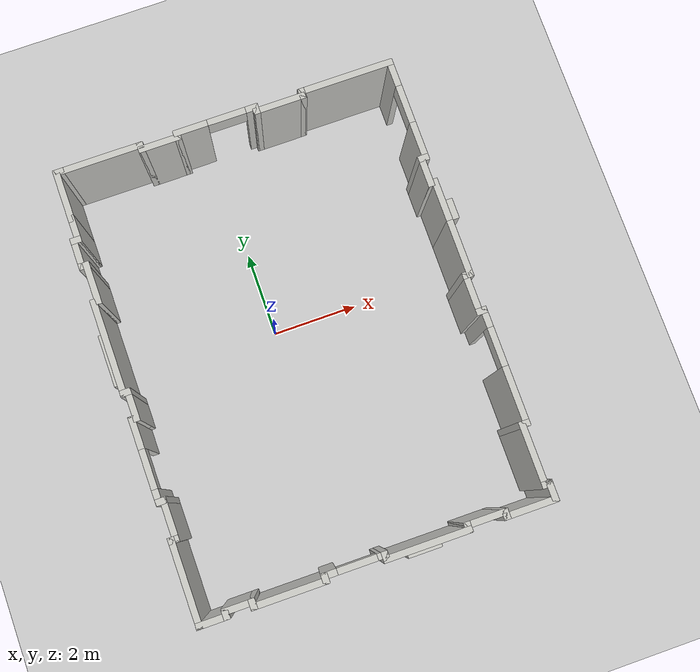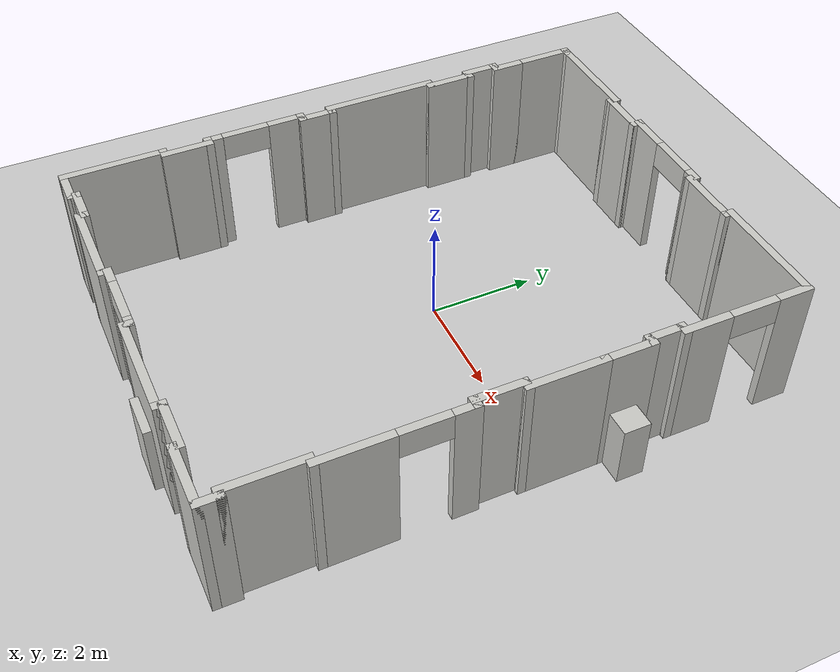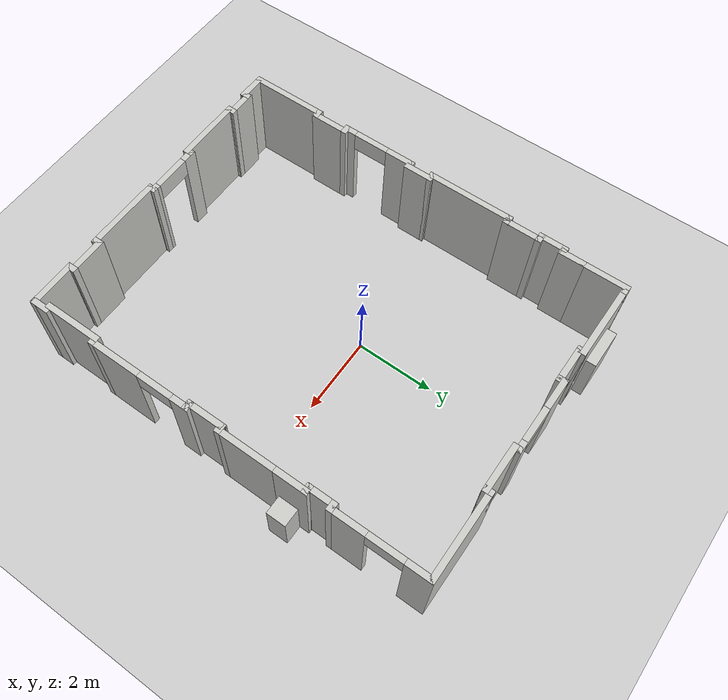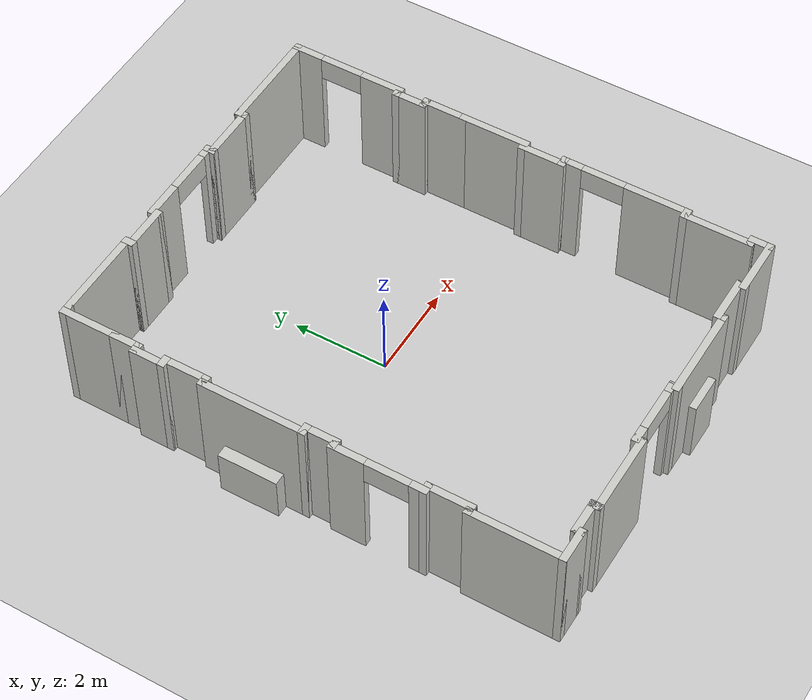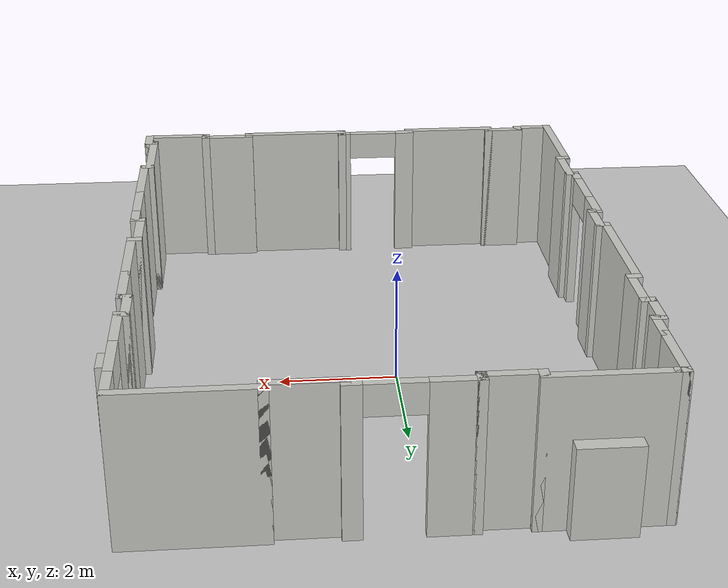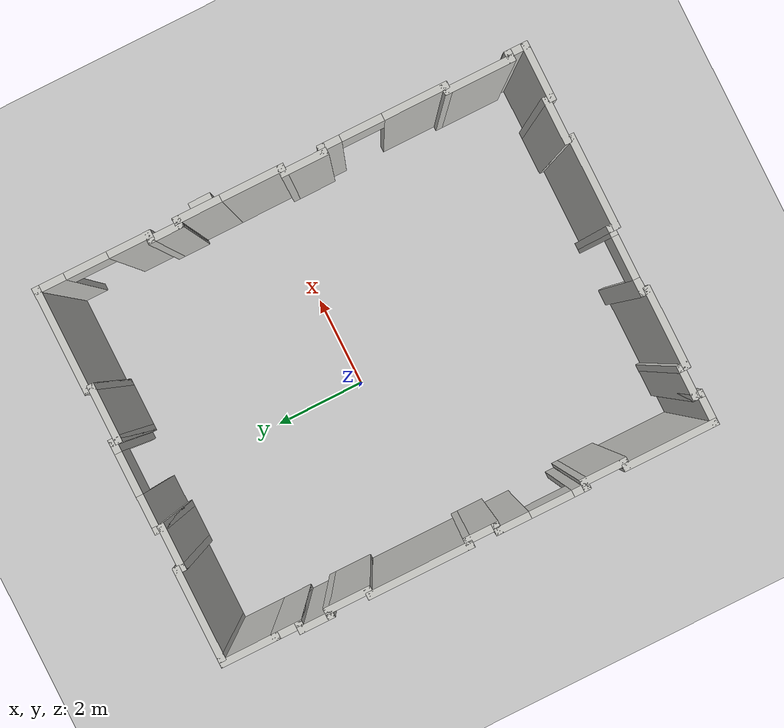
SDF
<sdf version="1.6">
 <world name="default">
  <model name="ground_plane">
   <static>1</static>
   <link name="link">
    <collision name="collision">
     <geometry><plane><normal>0 0 1</normal><size>100 100</size></plane></geometry>
     <surface><friction><ode><mu>100</mu><mu2>50</mu2></ode></friction></surface>
    </collision>
    <visual name="visual">
     <cast_shadows>0</cast_shadows>
     <geometry><plane><normal>0 0 1</normal><size>100 100</size></plane></geometry>
     <material>
      <script><uri>file://media/materials/scripts/gazebo.material</uri><name>Gazebo/Grey</name></script>
     </material>
    </visual>
   </link>
  </model>
  <model name="mcbryde_inner_middle">
   <pose>0.381716 -0.537288 0 0 -0 0</pose>
   <link name="Wall_0">
    <collision name="Wall_0_Collision_0">
     <geometry><box><size>2 0.15 2.5</size></box></geometry>
     <pose>0 0 1.25 0 -0 0</pose>
    </collision>
    <visual name="Wall_0_Visual_0">
     <pose>0 0 1.25 0 -0 0</pose>
     <geometry><box><size>2 0.15 2.5</size></box></geometry>
     <material>
      <script><uri>file://media/materials/scripts/gazebo.material</uri><name>Gazebo/CeilingTiled</name></script>
      <ambient>1 1 1 1</ambient>
     </material>
    </visual>
    <collision name="Wall_0_Collision_1">
     <geometry><box><size>1 0.25 1.5</size></box></geometry>
     <pose>0 0.2 0.75 0 -0 0</pose>
    </collision>
    <visual name="Wall_0_Visual_1">
     <pose>0 0.2 0.75 0 -0 0</pose>
     <geometry><box><size>1 0.25 1.5</size></box></geometry>
     <material>
      <script><uri>file://media/materials/scripts/gazebo.material</uri><name>Gazebo/CeilingTiled</name></script>
      <ambient>0.7 1 0.7 1</ambient>
     </material>
    </visual>
    <pose>-2.85 5.15 0 0 -0 0</pose>
   </link>
   <link name="Wall_1">
    <collision name="Wall_1_Collision">
     <geometry><box><size>0.25 0.15 2.5</size></box></geometry>
     <pose>0 0 1.25 0 -0 0</pose>
    </collision>
    <visual name="Wall_1_Visual">
     <pose>0 0 1.25 0 -0 0</pose>
     <geometry><box><size>0.25 0.15 2.5</size></box></geometry>
     <material>
      <script><uri>file://media/materials/scripts/gazebo.material</uri><name>Gazebo/CeilingTiled</name></script>
      <ambient>1 1 1 1</ambient>
     </material>
    </visual>
    <pose>-1.925 5.1 0 0 0 -1.5708</pose>
   </link>
   <link name="Wall_10">
    <collision name="Wall_10_Collision">
     <geometry><box><size>0.25 0.15 2.5</size></box></geometry>
     <pose>0 0 1.25 0 -0 0</pose>
    </collision>
    <visual name="Wall_10_Visual">
     <pose>0 0 1.25 0 -0 0</pose>
     <geometry><box><size>0.25 0.15 2.5</size></box></geometry>
     <material>
      <script><uri>file://media/materials/scripts/gazebo.material</uri><name>Gazebo/CeilingTiled</name></script>
      <ambient>1 1 1 1</ambient>
     </material>
    </visual>
    <pose>3.925 2.8 0 0 -0 3.14159</pose>
   </link>
   <link name="Wall_11">
    <collision name="Wall_11_Collision">
     <geometry><box><size>0.75 0.15 2.5</size></box></geometry>
     <pose>0 0 1.25 0 -0 0</pose>
    </collision>
    <visual name="Wall_11_Visual">
     <pose>0 0 1.25 0 -0 0</pose>
     <geometry><box><size>0.75 0.15 2.5</size></box></geometry>
     <material>
      <script><uri>file://media/materials/scripts/gazebo.material</uri><name>Gazebo/CeilingTiled</name></script>
      <ambient>1 1 1 1</ambient>
     </material>
    </visual>
    <pose>3.875 2.5 0 0 0 -1.5708</pose>
   </link>
   <link name="Wall_12">
    <collision name="Wall_12_Collision">
     <geometry><box><size>0.25 0.15 2.5</size></box></geometry>
     <pose>0 0 1.25 0 -0 0</pose>
    </collision>
    <visual name="Wall_12_Visual">
     <pose>0 0 1.25 0 -0 0</pose>
     <geometry><box><size>0.25 0.15 2.5</size></box></geometry>
     <material>
      <script><uri>file://media/materials/scripts/gazebo.material</uri><name>Gazebo/CeilingTiled</name></script>
      <ambient>1 1 1 1</ambient>
     </material>
    </visual>
    <pose>3.925 2.2 0 0 -0 0</pose>
   </link>
   <link name="Wall_13">
    <collision name="Wall_13_Collision_0">
     <geometry><box><size>1 0.15 2.5</size></box></geometry>
     <pose>0 0 1.25 0 -0 0</pose>
    </collision>
    <visual name="Wall_13_Visual_0">
     <pose>0 0 1.25 0 -0 0</pose>
     <geometry><box><size>1 0.15 2.5</size></box></geometry>
     <material>
      <script><uri>file://media/materials/scripts/gazebo.material</uri><name>Gazebo/CeilingTiled</name></script>
      <ambient>1 1 1 1</ambient>
     </material>
    </visual>
    <collision name="Wall_13_Collision_1">
     <geometry><box><size>0.5 0.45 1.2</size></box></geometry>
     <pose>0 0.3 0.6 0 -0 0</pose>
    </collision>
    <visual name="Wall_13_Visual_1">
     <pose>0 0.3 0.6 0 -0 0</pose>
     <geometry><box><size>0.5 0.45 1.2</size></box></geometry>
     <material>
      <script><uri>file://media/materials/scripts/gazebo.material</uri><name>Gazebo/CeilingTiled</name></script>
      <ambient>0.5 1 1 1</ambient>
     </material>
    </visual>
    <pose>3.975 1.775 0 0 0 -1.5708</pose>
   </link>
   <link name="Wall_15">
    <collision name="Wall_15_Collision">
     <geometry><box><size>1.5 0.15 2.5</size></box></geometry>
     <pose>0 0 1.25 0 -0 0</pose>
    </collision>
    <visual name="Wall_15_Visual">
     <pose>0 0 1.25 0 -0 0</pose>
     <geometry><box><size>1.5 0.15 2.5</size></box></geometry>
     <material>
      <script><uri>file://media/materials/scripts/gazebo.material</uri><name>Gazebo/CeilingTiled</name></script>
      <ambient>1 1 1 1</ambient>
     </material>
    </visual>
    <pose>3.975 0.675 0 0 0 -1.5708</pose>
   </link>
   <link name="Wall_16">
    <collision name="Wall_16_Collision">
     <geometry><box><size>0.25 0.15 2.5</size></box></geometry>
     <pose>0 0 1.25 0 -0 0</pose>
    </collision>
    <visual name="Wall_16_Visual">
     <pose>0 0 1.25 0 -0 0</pose>
     <geometry><box><size>0.25 0.15 2.5</size></box></geometry>
     <material>
      <script><uri>file://media/materials/scripts/gazebo.material</uri><name>Gazebo/CeilingTiled</name></script>
      <ambient>1 1 1 1</ambient>
     </material>
    </visual>
    <pose>3.925 0 0 0 -0 3.14159</pose>
   </link>
   <link name="Wall_17">
    <collision name="Wall_17_Collision">
     <geometry><box><size>1 0.15 2.5</size></box></geometry>
     <pose>0 0 1.25 0 -0 0</pose>
    </collision>
    <visual name="Wall_17_Visual">
     <pose>0 0 1.25 0 -0 0</pose>
     <geometry><box><size>1 0.15 2.5</size></box></geometry>
     <material>
      <script><uri>file://media/materials/scripts/gazebo.material</uri><name>Gazebo/CeilingTiled</name></script>
      <ambient>1 1 1 1</ambient>
     </material>
    </visual>
    <pose>3.875 -0.425 0 0 0 -1.5708</pose>
   </link>
   <link name="Wall_18">
    <collision name="Wall_18_Collision">
     <geometry><box><size>0.25 0.15 2.5</size></box></geometry>
     <pose>0 0 1.25 0 -0 0</pose>
    </collision>
    <visual name="Wall_18_Visual">
     <pose>0 0 1.25 0 -0 0</pose>
     <geometry><box><size>0.25 0.15 2.5</size></box></geometry>
     <material>
      <script><uri>file://media/materials/scripts/gazebo.material</uri><name>Gazebo/CeilingTiled</name></script>
      <ambient>1 1 1 1</ambient>
     </material>
    </visual>
    <pose>3.925 -0.85 0 0 -0 0</pose>
   </link>
   <link name="Wall_19">
    <pose>3.975 -2.15 0 0 0 -1.5708</pose>
    <visual name="Wall_19_Visual_0">
     <pose>-1.13808 0 1.25 0 -0 0</pose>
     <geometry><box><size>0.473848 0.15 2.5</size></box></geometry>
     <material>
      <script><uri>file://media/materials/scripts/gazebo.material</uri><name>Gazebo/CeilingTiled</name></script>
      <ambient>1 1 1 1</ambient>
     </material>
    </visual>
    <collision name="Wall_19_Collision_0">
     <geometry><box><size>0.473848 0.15 2.5</size></box></geometry>
     <pose>-1.13808 0 1.25 0 -0 0</pose>
    </collision>
    <visual name="Wall_19_Visual_1">
     <pose>0.686924 0 1.25 0 -0 0</pose>
     <geometry><box><size>1.37615 0.15 2.5</size></box></geometry>
     <material>
      <script><uri>file://media/materials/scripts/gazebo.material</uri><name>Gazebo/CeilingTiled</name></script>
      <ambient>1 1 1 1</ambient>
     </material>
    </visual>
    <collision name="Wall_19_Collision_1">
     <geometry><box><size>1.37615 0.15 2.5</size></box></geometry>
     <pose>0.686924 0 1.25 0 -0 0</pose>
    </collision>
    <visual name="Wall_19_Visual_2">
     <pose>-0.451152 0 2.25 0 -0 0</pose>
     <geometry><box><size>0.9 0.15 0.5</size></box></geometry>
     <material>
      <script><uri>file://media/materials/scripts/gazebo.material</uri><name>Gazebo/CeilingTiled</name></script>
      <ambient>1 1 1 1</ambient>
     </material>
    </visual>
    <collision name="Wall_19_Collision_2">
     <geometry><box><size>0.9 0.15 0.5</size></box></geometry>
     <pose>-0.451152 0 2.25 0 -0 0</pose>
    </collision>
   </link>
   <link name="Wall_2">
    <collision name="Wall_2_Collision">
     <geometry><box><size>1 0.15 2.5</size></box></geometry>
     <pose>0 0 1.25 0 -0 0</pose>
    </collision>
    <visual name="Wall_2_Visual">
     <pose>0 0 1.25 0 -0 0</pose>
     <geometry><box><size>1 0.15 2.5</size></box></geometry>
     <material>
      <script><uri>file://media/materials/scripts/gazebo.material</uri><name>Gazebo/CeilingTiled</name></script>
      <ambient>1 1 1 1</ambient>
     </material>
    </visual>
    <pose>-1.5 5.05 0 0 -0 0</pose>
   </link>
   <link name="Wall_20">
    <collision name="Wall_20_Collision">
     <geometry><box><size>0.25 0.15 2.5</size></box></geometry>
     <pose>0 0 1.25 0 -0 0</pose>
    </collision>
    <visual name="Wall_20_Visual">
     <pose>0 0 1.25 0 -0 0</pose>
     <geometry><box><size>0.25 0.15 2.5</size></box></geometry>
     <material>
      <script><uri>file://media/materials/scripts/gazebo.material</uri><name>Gazebo/CeilingTiled</name></script>
      <ambient>1 1 1 1</ambient>
     </material>
    </visual>
    <pose>3.925 -3.45 0 0 -0 3.14159</pose>
   </link>
   <link name="Wall_21">
    <collision name="Wall_21_Collision">
     <geometry><box><size>1.5 0.15 2.5</size></box></geometry>
     <pose>0 0 1.25 0 -0 0</pose>
    </collision>
    <visual name="Wall_21_Visual">
     <pose>0 0 1.25 0 -0 0</pose>
     <geometry><box><size>1.5 0.15 2.5</size></box></geometry>
     <material>
      <script><uri>file://media/materials/scripts/gazebo.material</uri><name>Gazebo/CeilingTiled</name></script>
      <ambient>1 1 1 1</ambient>
     </material>
    </visual>
    <pose>3.875 -4.125 0 0 0 -1.5708</pose>
   </link>
   <link name="Wall_22">
    <collision name="Wall_22_Collision">
     <geometry><box><size>0.25 0.15 2.5</size></box></geometry>
     <pose>0 0 1.25 0 -0 0</pose>
    </collision>
    <visual name="Wall_22_Visual">
     <pose>0 0 1.25 0 -0 0</pose>
     <geometry><box><size>0.25 0.15 2.5</size></box></geometry>
     <material>
      <script><uri>file://media/materials/scripts/gazebo.material</uri><name>Gazebo/CeilingTiled</name></script>
      <ambient>1 1 1 1</ambient>
     </material>
    </visual>
    <pose>3.925 -4.8 0 0 -0 0</pose>
   </link>
   <link name="Wall_23">
    <collision name="Wall_23_Collision">
     <geometry><box><size>0.5 0.15 2.5</size></box></geometry>
     <pose>0 0 1.25 0 -0 0</pose>
    </collision>
    <visual name="Wall_23_Visual">
     <pose>0 0 1.25 0 -0 0</pose>
     <geometry><box><size>0.5 0.15 2.5</size></box></geometry>
     <material>
      <script><uri>file://media/materials/scripts/gazebo.material</uri><name>Gazebo/CeilingTiled</name></script>
      <ambient>1 1 1 1</ambient>
     </material>
    </visual>
    <pose>3.975 -4.975 0 0 0 -1.5708</pose>
   </link>
   <link name="Wall_24">
    <collision name="Wall_24_Collision">
     <geometry><box><size>1.25 0.15 2.5</size></box></geometry>
     <pose>0 0 1.25 0 -0 0</pose>
    </collision>
    <visual name="Wall_24_Visual">
     <pose>0 0 1.25 0 -0 0</pose>
     <geometry><box><size>1.25 0.15 2.5</size></box></geometry>
     <material>
      <script><uri>file://media/materials/scripts/gazebo.material</uri><name>Gazebo/CeilingTiled</name></script>
      <ambient>1 1 1 1</ambient>
     </material>
    </visual>
    <pose>3.425 -5.15 0 0 -0 3.14159</pose>
   </link>
   <link name="Wall_25">
    <collision name="Wall_25_Collision">
     <geometry><box><size>0.25 0.15 2.5</size></box></geometry>
     <pose>0 0 1.25 0 -0 0</pose>
    </collision>
    <visual name="Wall_25_Visual">
     <pose>0 0 1.25 0 -0 0</pose>
     <geometry><box><size>0.25 0.15 2.5</size></box></geometry>
     <material>
      <script><uri>file://media/materials/scripts/gazebo.material</uri><name>Gazebo/CeilingTiled</name></script>
      <ambient>1 1 1 1</ambient>
     </material>
    </visual>
    <pose>2.875 -5.1 0 0 -0 1.5708</pose>
   </link>
   <link name="Wall_26">
    <collision name="Wall_26_Collision">
     <geometry><box><size>1 0.15 2.5</size></box></geometry>
     <pose>0 0 1.25 0 -0 0</pose>
    </collision>
    <visual name="Wall_26_Visual">
     <pose>0 0 1.25 0 -0 0</pose>
     <geometry><box><size>1 0.15 2.5</size></box></geometry>
     <material>
      <script><uri>file://media/materials/scripts/gazebo.material</uri><name>Gazebo/CeilingTiled</name></script>
      <ambient>1 1 1 1</ambient>
     </material>
    </visual>
    <pose>2.45 -5.05 0 0 -0 3.14159</pose>
   </link>
   <link name="Wall_29">
    <collision name="Wall_29_Collision">
     <geometry><box><size>0.25 0.15 2.5</size></box></geometry>
     <pose>0 0 1.25 0 -0 0</pose>
    </collision>
    <visual name="Wall_29_Visual">
     <pose>0 0 1.25 0 -0 0</pose>
     <geometry><box><size>0.25 0.15 2.5</size></box></geometry>
     <material>
      <script><uri>file://media/materials/scripts/gazebo.material</uri><name>Gazebo/CeilingTiled</name></script>
      <ambient>1 1 1 1</ambient>
     </material>
    </visual>
    <pose>2.025 -5.1 0 0 0 -1.5708</pose>
   </link>
   <link name="Wall_3">
    <collision name="Wall_3_Collision">
     <geometry><box><size>0.25 0.15 2.5</size></box></geometry>
     <pose>0 0 1.25 0 -0 0</pose>
    </collision>
    <visual name="Wall_3_Visual">
     <pose>0 0 1.25 0 -0 0</pose>
     <geometry><box><size>0.25 0.15 2.5</size></box></geometry>
     <material>
      <script><uri>file://media/materials/scripts/gazebo.material</uri><name>Gazebo/CeilingTiled</name></script>
      <ambient>1 1 1 1</ambient>
     </material>
    </visual>
    <pose>-1.075 5.1 0 0 -0 1.5708</pose>
   </link>
   <link name="Wall_30">
    <collision name="Wall_30_Collision_0">
     <geometry><box><size>2 0.15 2.5</size></box></geometry>
     <pose>0 0 1.25 0 -0 0</pose>
    </collision>
    <visual name="Wall_30_Visual_0">
     <pose>0 0 1.25 0 -0 0</pose>
     <geometry><box><size>2 0.15 2.5</size></box></geometry>
     <material>
      <script><uri>file://media/materials/scripts/gazebo.material</uri><name>Gazebo/CeilingTiled</name></script>
      <ambient>1 1 1 1</ambient>
     </material>
    </visual>
    <collision name="Wall_30_Collision_1">
     <geometry><box><size>0.8 0.15 1.4</size></box></geometry>
     <pose>0 0.15 0.7 0 -0 0</pose>
    </collision>
    <visual name="Wall_30_Visual_1">
     <pose>0 0.15 0.7 0 -0 0</pose>
     <geometry><box><size>0.8 0.15 1.4</size></box></geometry>
     <material>
      <script><uri>file://media/materials/scripts/gazebo.material</uri><name>Gazebo/CeilingTiled</name></script>
      <ambient>0.7 0.7 1 1</ambient>
     </material>
    </visual>
    <pose>1.1 -5.15 0 0 -0 3.14159</pose>
   </link>
   <link name="Wall_31">
    <collision name="Wall_31_Collision">
     <geometry><box><size>0.25 0.15 2.5</size></box></geometry>
     <pose>0 0 1.25 0 -0 0</pose>
    </collision>
    <visual name="Wall_31_Visual">
     <pose>0 0 1.25 0 -0 0</pose>
     <geometry><box><size>0.25 0.15 2.5</size></box></geometry>
     <material>
      <script><uri>file://media/materials/scripts/gazebo.material</uri><name>Gazebo/CeilingTiled</name></script>
      <ambient>1 1 1 1</ambient>
     </material>
    </visual>
    <pose>0.175 -5.1 0 0 -0 1.5708</pose>
   </link>
   <link name="Wall_32">
    <pose>-0.5 -5.05 0 0 -0 3.14159</pose>
    <visual name="Wall_32_Visual_0">
     <pose>-0.629638 0 1.25 0 -0 0</pose>
     <geometry><box><size>0.240724 0.15 2.5</size></box></geometry>
     <material>
      <script><uri>file://media/materials/scripts/gazebo.material</uri><name>Gazebo/CeilingTiled</name></script>
      <ambient>1 1 1 1</ambient>
     </material>
    </visual>
    <collision name="Wall_32_Collision_0">
     <geometry><box><size>0.240724 0.15 2.5</size></box></geometry>
     <pose>-0.629638 0 1.25 0 -0 0</pose>
    </collision>
    <visual name="Wall_32_Visual_1">
     <pose>0.570362 0 1.25 0 -0 0</pose>
     <geometry><box><size>0.359276 0.15 2.5</size></box></geometry>
     <material>
      <script><uri>file://media/materials/scripts/gazebo.material</uri><name>Gazebo/CeilingTiled</name></script>
      <ambient>1 1 1 1</ambient>
     </material>
    </visual>
    <collision name="Wall_32_Collision_1">
     <geometry><box><size>0.359276 0.15 2.5</size></box></geometry>
     <pose>0.570362 0 1.25 0 -0 0</pose>
    </collision>
    <visual name="Wall_32_Visual_2">
     <pose>-0.059276 0 2.25 0 -0 0</pose>
     <geometry><box><size>0.9 0.15 0.5</size></box></geometry>
     <material>
      <script><uri>file://media/materials/scripts/gazebo.material</uri><name>Gazebo/CeilingTiled</name></script>
      <ambient>1 1 1 1</ambient>
     </material>
    </visual>
    <collision name="Wall_32_Collision_2">
     <geometry><box><size>0.9 0.15 0.5</size></box></geometry>
     <pose>-0.059276 0 2.25 0 -0 0</pose>
    </collision>
   </link>
   <link name="Wall_35">
    <collision name="Wall_35_Collision">
     <geometry><box><size>0.25 0.15 2.5</size></box></geometry>
     <pose>0 0 1.25 0 -0 0</pose>
    </collision>
    <visual name="Wall_35_Visual">
     <pose>0 0 1.25 0 -0 0</pose>
     <geometry><box><size>0.25 0.15 2.5</size></box></geometry>
     <material>
      <script><uri>file://media/materials/scripts/gazebo.material</uri><name>Gazebo/CeilingTiled</name></script>
      <ambient>1 1 1 1</ambient>
     </material>
    </visual>
    <pose>-1.175 -5.1 0 0 0 -1.5708</pose>
   </link>
   <link name="Wall_36">
    <collision name="Wall_36_Collision">
     <geometry><box><size>1.75 0.15 2.5</size></box></geometry>
     <pose>0 0 1.25 0 -0 0</pose>
    </collision>
    <visual name="Wall_36_Visual">
     <pose>0 0 1.25 0 -0 0</pose>
     <geometry><box><size>1.75 0.15 2.5</size></box></geometry>
     <material>
      <script><uri>file://media/materials/scripts/gazebo.material</uri><name>Gazebo/CeilingTiled</name></script>
      <ambient>1 1 1 1</ambient>
     </material>
    </visual>
    <pose>-1.975 -5.15 0 0 -0 3.14159</pose>
   </link>
   <link name="Wall_37">
    <collision name="Wall_37_Collision">
     <geometry><box><size>0.25 0.15 2.5</size></box></geometry>
     <pose>0 0 1.25 0 -0 0</pose>
    </collision>
    <visual name="Wall_37_Visual">
     <pose>0 0 1.25 0 -0 0</pose>
     <geometry><box><size>0.25 0.15 2.5</size></box></geometry>
     <material>
      <script><uri>file://media/materials/scripts/gazebo.material</uri><name>Gazebo/CeilingTiled</name></script>
      <ambient>1 1 1 1</ambient>
     </material>
    </visual>
    <pose>-2.775 -5.1 0 0 -0 1.5708</pose>
   </link>
   <link name="Wall_38">
    <collision name="Wall_38_Collision">
     <geometry><box><size>0.75 0.15 2.5</size></box></geometry>
     <pose>0 0 1.25 0 -0 0</pose>
    </collision>
    <visual name="Wall_38_Visual">
     <pose>0 0 1.25 0 -0 0</pose>
     <geometry><box><size>0.75 0.15 2.5</size></box></geometry>
     <material>
      <script><uri>file://media/materials/scripts/gazebo.material</uri><name>Gazebo/CeilingTiled</name></script>
      <ambient>1 1 1 1</ambient>
     </material>
    </visual>
    <pose>-3.075 -5.05 0 0 -0 3.14159</pose>
   </link>
   <link name="Wall_4">
    <pose>-0.15 5.15 0 0 -0 0</pose>
    <visual name="Wall_4_Visual_0">
     <pose>-0.599922 0 1.25 0 -0 0</pose>
     <geometry><box><size>0.800155 0.15 2.5</size></box></geometry>
     <material>
      <script><uri>file://media/materials/scripts/gazebo.material</uri><name>Gazebo/CeilingTiled</name></script>
      <ambient>1 1 1 1</ambient>
     </material>
    </visual>
    <collision name="Wall_4_Collision_0">
     <geometry><box><size>0.800155 0.15 2.5</size></box></geometry>
     <pose>-0.599922 0 1.25 0 -0 0</pose>
    </collision>
    <visual name="Wall_4_Visual_1">
     <pose>0.850078 0 1.25 0 -0 0</pose>
     <geometry><box><size>0.299845 0.15 2.5</size></box></geometry>
     <material>
      <script><uri>file://media/materials/scripts/gazebo.material</uri><name>Gazebo/CeilingTiled</name></script>
      <ambient>1 1 1 1</ambient>
     </material>
    </visual>
    <collision name="Wall_4_Collision_1">
     <geometry><box><size>0.299845 0.15 2.5</size></box></geometry>
     <pose>0.850078 0 1.25 0 -0 0</pose>
    </collision>
    <visual name="Wall_4_Visual_2">
     <pose>0.250155 0 2.25 0 -0 0</pose>
     <geometry><box><size>0.9 0.15 0.5</size></box></geometry>
     <material>
      <script><uri>file://media/materials/scripts/gazebo.material</uri><name>Gazebo/CeilingTiled</name></script>
      <ambient>1 1 1 1</ambient>
     </material>
    </visual>
    <collision name="Wall_4_Collision_2">
     <geometry><box><size>0.9 0.15 0.5</size></box></geometry>
     <pose>0.250155 0 2.25 0 -0 0</pose>
    </collision>
   </link>
   <link name="Wall_42">
    <collision name="Wall_42_Collision">
     <geometry><box><size>0.25 0.15 2.5</size></box></geometry>
     <pose>0 0 1.25 0 -0 0</pose>
    </collision>
    <visual name="Wall_42_Visual">
     <pose>0 0 1.25 0 -0 0</pose>
     <geometry><box><size>0.25 0.15 2.5</size></box></geometry>
     <material>
      <script><uri>file://media/materials/scripts/gazebo.material</uri><name>Gazebo/CeilingTiled</name></script>
      <ambient>1 1 1 1</ambient>
     </material>
    </visual>
    <pose>-3.375 -5.1 0 0 0 -1.5708</pose>
   </link>
   <link name="Wall_43">
    <collision name="Wall_43_Collision">
     <geometry><box><size>0.75 0.15 2.5</size></box></geometry>
     <pose>0 0 1.25 0 -0 0</pose>
    </collision>
    <visual name="Wall_43_Visual">
     <pose>0 0 1.25 0 -0 0</pose>
     <geometry><box><size>0.75 0.15 2.5</size></box></geometry>
     <material>
      <script><uri>file://media/materials/scripts/gazebo.material</uri><name>Gazebo/CeilingTiled</name></script>
      <ambient>1 1 1 1</ambient>
     </material>
    </visual>
    <pose>-3.675 -5.15 0 0 -0 3.14159</pose>
   </link>
   <link name="Wall_44">
    <collision name="Wall_44_Collision">
     <geometry><box><size>2 0.15 2.5</size></box></geometry>
     <pose>0 0 1.25 0 -0 0</pose>
    </collision>
    <visual name="Wall_44_Visual">
     <pose>0 0 1.25 0 -0 0</pose>
     <geometry><box><size>2 0.15 2.5</size></box></geometry>
     <material>
      <script><uri>file://media/materials/scripts/gazebo.material</uri><name>Gazebo/CeilingTiled</name></script>
      <ambient>1 1 1 1</ambient>
     </material>
    </visual>
    <pose>-3.975 -4.225 0 0 -0 1.5708</pose>
   </link>
   <link name="Wall_46">
    <collision name="Wall_46_Collision">
     <geometry><box><size>0.25 0.15 2.5</size></box></geometry>
     <pose>0 0 1.25 0 -0 0</pose>
    </collision>
    <visual name="Wall_46_Visual">
     <pose>0 0 1.25 0 -0 0</pose>
     <geometry><box><size>0.25 0.15 2.5</size></box></geometry>
     <material>
      <script><uri>file://media/materials/scripts/gazebo.material</uri><name>Gazebo/CeilingTiled</name></script>
      <ambient>1 1 1 1</ambient>
     </material>
    </visual>
    <pose>-3.925 -3.3 0 0 -0 0</pose>
   </link>
   <link name="Wall_47">
    <collision name="Wall_47_Collision">
     <geometry><box><size>1 0.15 2.5</size></box></geometry>
     <pose>0 0 1.25 0 -0 0</pose>
    </collision>
    <visual name="Wall_47_Visual">
     <pose>0 0 1.25 0 -0 0</pose>
     <geometry><box><size>1 0.15 2.5</size></box></geometry>
     <material>
      <script><uri>file://media/materials/scripts/gazebo.material</uri><name>Gazebo/CeilingTiled</name></script>
      <ambient>1 1 1 1</ambient>
     </material>
    </visual>
    <pose>-3.875 -2.875 0 0 -0 1.5708</pose>
   </link>
   <link name="Wall_48">
    <collision name="Wall_48_Collision">
     <geometry><box><size>0.25 0.15 2.5</size></box></geometry>
     <pose>0 0 1.25 0 -0 0</pose>
    </collision>
    <visual name="Wall_48_Visual">
     <pose>0 0 1.25 0 -0 0</pose>
     <geometry><box><size>0.25 0.15 2.5</size></box></geometry>
     <material>
      <script><uri>file://media/materials/scripts/gazebo.material</uri><name>Gazebo/CeilingTiled</name></script>
      <ambient>1 1 1 1</ambient>
     </material>
    </visual>
    <pose>-3.925 -2.45 0 0 -0 3.14159</pose>
   </link>
   <link name="Wall_49">
    <pose>-3.975 -1.525 0 0 -0 1.5708</pose>
    <visual name="Wall_49_Visual_0">
     <pose>-0.821903 0 1.25 0 -0 0</pose>
     <geometry><box><size>0.356195 0.15 2.5</size></box></geometry>
     <material>
      <script><uri>file://media/materials/scripts/gazebo.material</uri><name>Gazebo/CeilingTiled</name></script>
      <ambient>1 1 1 1</ambient>
     </material>
    </visual>
    <collision name="Wall_49_Collision_0">
     <geometry><box><size>0.356195 0.15 2.5</size></box></geometry>
     <pose>-0.821903 0 1.25 0 -0 0</pose>
    </collision>
    <visual name="Wall_49_Visual_1">
     <pose>0.628097 0 1.25 0 -0 0</pose>
     <geometry><box><size>0.743805 0.15 2.5</size></box></geometry>
     <material>
      <script><uri>file://media/materials/scripts/gazebo.material</uri><name>Gazebo/CeilingTiled</name></script>
      <ambient>1 1 1 1</ambient>
     </material>
    </visual>
    <collision name="Wall_49_Collision_1">
     <geometry><box><size>0.743805 0.15 2.5</size></box></geometry>
     <pose>0.628097 0 1.25 0 -0 0</pose>
    </collision>
    <visual name="Wall_49_Visual_2">
     <pose>-0.193805 0 2.25 0 -0 0</pose>
     <geometry><box><size>0.9 0.15 0.5</size></box></geometry>
     <material>
      <script><uri>file://media/materials/scripts/gazebo.material</uri><name>Gazebo/CeilingTiled</name></script>
      <ambient>1 1 1 1</ambient>
     </material>
    </visual>
    <collision name="Wall_49_Collision_2">
     <geometry><box><size>0.9 0.15 0.5</size></box></geometry>
     <pose>-0.193805 0 2.25 0 -0 0</pose>
    </collision>
   </link>
   <link name="Wall_5">
    <collision name="Wall_5_Collision">
     <geometry><box><size>0.25 0.15 2.5</size></box></geometry>
     <pose>0 0 1.25 0 -0 0</pose>
    </collision>
    <visual name="Wall_5_Visual">
     <pose>0 0 1.25 0 -0 0</pose>
     <geometry><box><size>0.25 0.15 2.5</size></box></geometry>
     <material>
      <script><uri>file://media/materials/scripts/gazebo.material</uri><name>Gazebo/CeilingTiled</name></script>
      <ambient>1 1 1 1</ambient>
     </material>
    </visual>
    <pose>0.775 5.1 0 0 0 -1.5708</pose>
   </link>
   <link name="Wall_50">
    <collision name="Wall_50_Collision">
     <geometry><box><size>0.25 0.15 2.5</size></box></geometry>
     <pose>0 0 1.25 0 -0 0</pose>
    </collision>
    <visual name="Wall_50_Visual">
     <pose>0 0 1.25 0 -0 0</pose>
     <geometry><box><size>0.25 0.15 2.5</size></box></geometry>
     <material>
      <script><uri>file://media/materials/scripts/gazebo.material</uri><name>Gazebo/CeilingTiled</name></script>
      <ambient>1 1 1 1</ambient>
     </material>
    </visual>
    <pose>-3.925 -0.6 0 0 -0 0</pose>
   </link>
   <link name="Wall_51">
    <collision name="Wall_51_Collision">
     <geometry><box><size>0.75 0.15 2.5</size></box></geometry>
     <pose>0 0 1.25 0 -0 0</pose>
    </collision>
    <visual name="Wall_51_Visual">
     <pose>0 0 1.25 0 -0 0</pose>
     <geometry><box><size>0.75 0.15 2.5</size></box></geometry>
     <material>
      <script><uri>file://media/materials/scripts/gazebo.material</uri><name>Gazebo/CeilingTiled</name></script>
      <ambient>1 1 1 1</ambient>
     </material>
    </visual>
    <pose>-3.875 -0.3 0 0 -0 1.5708</pose>
   </link>
   <link name="Wall_52">
    <collision name="Wall_52_Collision">
     <geometry><box><size>0.25 0.15 2.5</size></box></geometry>
     <pose>0 0 1.25 0 -0 0</pose>
    </collision>
    <visual name="Wall_52_Visual">
     <pose>0 0 1.25 0 -0 0</pose>
     <geometry><box><size>0.25 0.15 2.5</size></box></geometry>
     <material>
      <script><uri>file://media/materials/scripts/gazebo.material</uri><name>Gazebo/CeilingTiled</name></script>
      <ambient>1 1 1 1</ambient>
     </material>
    </visual>
    <pose>-3.925 0 0 0 -0 3.14159</pose>
   </link>
   <link name="Wall_53">
    <collision name="Wall_53_Collision_0">
     <geometry><box><size>2.25 0.15 2.5</size></box></geometry>
     <pose>0 0 1.25 0 -0 0</pose>
    </collision>
    <visual name="Wall_53_Visual_0">
     <pose>0 0 1.25 0 -0 0</pose>
     <geometry><box><size>2.25 0.15 2.5</size></box></geometry>
     <material>
      <script><uri>file://media/materials/scripts/gazebo.material</uri><name>Gazebo/CeilingTiled</name></script>
      <ambient>1 1 1 1</ambient>
     </material>
    </visual>
    <collision name="Wall_53_Collision_1">
     <geometry><box><size>1.25 0.25 1.0</size></box></geometry>
     <pose>0 0.2 0.5 0 -0 0</pose>
    </collision>
    <visual name="Wall_53_Visual_1">
     <pose>0 0.2 0.5 0 -0 0</pose>
     <geometry><box><size>1.25 0.25 1.0</size></box></geometry>
     <material>
      <script><uri>file://media/materials/scripts/gazebo.material</uri><name>Gazebo/CeilingTiled</name></script>
      <ambient>1 0.7 0.7 1</ambient>
     </material>
    </visual>
    <pose>-3.975 1.05 0 0 -0 1.5708</pose>
   </link>
   <link name="Wall_54">
    <collision name="Wall_54_Collision">
     <geometry><box><size>0.25 0.15 2.5</size></box></geometry>
     <pose>0 0 1.25 0 -0 0</pose>
    </collision>
    <visual name="Wall_54_Visual">
     <pose>0 0 1.25 0 -0 0</pose>
     <geometry><box><size>0.25 0.15 2.5</size></box></geometry>
     <material>
      <script><uri>file://media/materials/scripts/gazebo.material</uri><name>Gazebo/CeilingTiled</name></script>
      <ambient>1 1 1 1</ambient>
     </material>
    </visual>
    <pose>-3.925 2.1 0 0 -0 0</pose>
   </link>
   <link name="Wall_55">
    <collision name="Wall_55_Collision">
     <geometry><box><size>1 0.15 2.5</size></box></geometry>
     <pose>0 0 1.25 0 -0 0</pose>
    </collision>
    <visual name="Wall_55_Visual">
     <pose>0 0 1.25 0 -0 0</pose>
     <geometry><box><size>1 0.15 2.5</size></box></geometry>
     <material>
      <script><uri>file://media/materials/scripts/gazebo.material</uri><name>Gazebo/CeilingTiled</name></script>
      <ambient>1 1 1 1</ambient>
     </material>
    </visual>
    <pose>-3.875 2.525 0 0 -0 1.5708</pose>
   </link>
   <link name="Wall_6">
    <collision name="Wall_6_Collision">
     <geometry><box><size>1.25 0.15 2.5</size></box></geometry>
     <pose>0 0 1.25 0 -0 0</pose>
    </collision>
    <visual name="Wall_6_Visual">
     <pose>0 0 1.25 0 -0 0</pose>
     <geometry><box><size>1.25 0.15 2.5</size></box></geometry>
     <material>
      <script><uri>file://media/materials/scripts/gazebo.material</uri><name>Gazebo/CeilingTiled</name></script>
      <ambient>1 1 1 1</ambient>
     </material>
    </visual>
    <pose>1.325 5.05 0 0 -0 0</pose>
   </link>
   <link name="Wall_64">
    <collision name="Wall_64_Collision">
     <geometry><box><size>0.25 0.15 2.5</size></box></geometry>
     <pose>0 0 1.25 0 -0 0</pose>
    </collision>
    <visual name="Wall_64_Visual">
     <pose>0 0 1.25 0 -0 0</pose>
     <geometry><box><size>0.25 0.15 2.5</size></box></geometry>
     <material>
      <script><uri>file://media/materials/scripts/gazebo.material</uri><name>Gazebo/CeilingTiled</name></script>
      <ambient>1 1 1 1</ambient>
     </material>
    </visual>
    <pose>-3.825 5.15 0 0 -0 3.14159</pose>
   </link>
   <link name="Wall_65">
    <collision name="Wall_65_Collision">
     <geometry><box><size>1.25 0.15 2.5</size></box></geometry>
     <pose>0 0 1.25 0 -0 0</pose>
    </collision>
    <visual name="Wall_65_Visual">
     <pose>0 0 1.25 0 -0 0</pose>
     <geometry><box><size>1.25 0.15 2.5</size></box></geometry>
     <material>
      <script><uri>file://media/materials/scripts/gazebo.material</uri><name>Gazebo/CeilingTiled</name></script>
      <ambient>1 1 1 1</ambient>
     </material>
    </visual>
    <pose>-3.875 4.6 0 0 0 -1.5708</pose>
   </link>
   <link name="Wall_69">
    <collision name="Wall_69_Collision">
     <geometry><box><size>0.25 0.15 2.5</size></box></geometry>
     <pose>0 0 1.25 0 -0 0</pose>
    </collision>
    <visual name="Wall_69_Visual">
     <pose>0 0 1.25 0 -0 0</pose>
     <geometry><box><size>0.25 0.15 2.5</size></box></geometry>
     <material>
      <script><uri>file://media/materials/scripts/gazebo.material</uri><name>Gazebo/CeilingTiled</name></script>
      <ambient>1 1 1 1</ambient>
     </material>
    </visual>
    <pose>-3.925 2.95 0 0 -0 3.14159</pose>
   </link>
   <link name="Wall_7">
    <collision name="Wall_7_Collision">
     <geometry><box><size>0.25 0.15 2.5</size></box></geometry>
     <pose>0 0 1.25 0 -0 0</pose>
    </collision>
    <visual name="Wall_7_Visual">
     <pose>0 0 1.25 0 -0 0</pose>
     <geometry><box><size>0.25 0.15 2.5</size></box></geometry>
     <material>
      <script><uri>file://media/materials/scripts/gazebo.material</uri><name>Gazebo/CeilingTiled</name></script>
      <ambient>1 1 1 1</ambient>
     </material>
    </visual>
    <pose>1.875 5.1 0 0 -0 1.5708</pose>
   </link>
   <link name="Wall_70">
    <collision name="Wall_70_Collision">
     <geometry><box><size>0.75 0.15 2.5</size></box></geometry>
     <pose>0 0 1.25 0 -0 0</pose>
    </collision>
    <visual name="Wall_70_Visual">
     <pose>0 0 1.25 0 -0 0</pose>
     <geometry><box><size>0.75 0.15 2.5</size></box></geometry>
     <material>
      <script><uri>file://media/materials/scripts/gazebo.material</uri><name>Gazebo/CeilingTiled</name></script>
      <ambient>1 1 1 1</ambient>
     </material>
    </visual>
    <pose>-3.975 3.25 0 0 -0 1.5708</pose>
   </link>
   <link name="Wall_71">
    <collision name="Wall_71_Collision">
     <geometry><box><size>0.25 0.15 2.5</size></box></geometry>
     <pose>0 0 1.25 0 -0 0</pose>
    </collision>
    <visual name="Wall_71_Visual">
     <pose>0 0 1.25 0 -0 0</pose>
     <geometry><box><size>0.25 0.15 2.5</size></box></geometry>
     <material>
      <script><uri>file://media/materials/scripts/gazebo.material</uri><name>Gazebo/CeilingTiled</name></script>
      <ambient>1 1 1 1</ambient>
     </material>
    </visual>
    <pose>-3.925 3.55 0 0 -0 0</pose>
   </link>
   <link name="Wall_72">
    <collision name="Wall_72_Collision">
     <geometry><box><size>0.65 0.15 2.5</size></box></geometry>
     <pose>0 0 1.25 0 -0 0</pose>
    </collision>
    <visual name="Wall_72_Visual">
     <pose>0 0 1.25 0 -0 0</pose>
     <geometry><box><size>0.65 0.15 2.5</size></box></geometry>
     <material>
      <script><uri>file://media/materials/scripts/gazebo.material</uri><name>Gazebo/CeilingTiled</name></script>
      <ambient>1 1 1 1</ambient>
     </material>
    </visual>
    <pose>-3.875 3.8 0 0 -0 1.5708</pose>
   </link>
   <link name="Wall_8">
    <collision name="Wall_8_Collision">
     <geometry><box><size>2.25 0.15 2.5</size></box></geometry>
     <pose>0 0 1.25 0 -0 0</pose>
    </collision>
    <visual name="Wall_8_Visual">
     <pose>0 0 1.25 0 -0 0</pose>
     <geometry><box><size>2.25 0.15 2.5</size></box></geometry>
     <material>
      <script><uri>file://media/materials/scripts/gazebo.material</uri><name>Gazebo/CeilingTiled</name></script>
      <ambient>1 1 1 1</ambient>
     </material>
    </visual>
    <pose>2.925 5.15 0 0 -0 0</pose>
   </link>
   <link name="Wall_9">
    <pose>3.975 3.975 0 0 0 -1.5708</pose>
    <visual name="Wall_9_Visual_0">
     <pose>-0.915967 0 1.25 0 -0 0</pose>
     <geometry><box><size>0.668065 0.15 2.5</size></box></geometry>
     <material>
      <script><uri>file://media/materials/scripts/gazebo.material</uri><name>Gazebo/CeilingTiled</name></script>
      <ambient>1 1 1 1</ambient>
     </material>
    </visual>
    <collision name="Wall_9_Collision_0">
     <geometry><box><size>0.668065 0.15 2.5</size></box></geometry>
     <pose>-0.915967 0 1.25 0 -0 0</pose>
    </collision>
    <visual name="Wall_9_Visual_1">
     <pose>0.784033 0 1.25 0 -0 0</pose>
     <geometry><box><size>0.931935 0.15 2.5</size></box></geometry>
     <material>
      <script><uri>file://media/materials/scripts/gazebo.material</uri><name>Gazebo/CeilingTiled</name></script>
      <ambient>1 1 1 1</ambient>
     </material>
    </visual>
    <collision name="Wall_9_Collision_1">
     <geometry><box><size>0.931935 0.15 2.5</size></box></geometry>
     <pose>0.784033 0 1.25 0 -0 0</pose>
    </collision>
    <visual name="Wall_9_Visual_2">
     <pose>-0.131935 0 2.25 0 -0 0</pose>
     <geometry><box><size>0.9 0.15 0.5</size></box></geometry>
     <material>
      <script><uri>file://media/materials/scripts/gazebo.material</uri><name>Gazebo/CeilingTiled</name></script>
      <ambient>1 1 1 1</ambient>
     </material>
    </visual>
    <collision name="Wall_9_Collision_2">
     <geometry><box><size>0.9 0.15 0.5</size></box></geometry>
     <pose>-0.131935 0 2.25 0 -0 0</pose>
    </collision>
   </link>
   <static>1</static>
  </model>
 </world>
</sdf>
